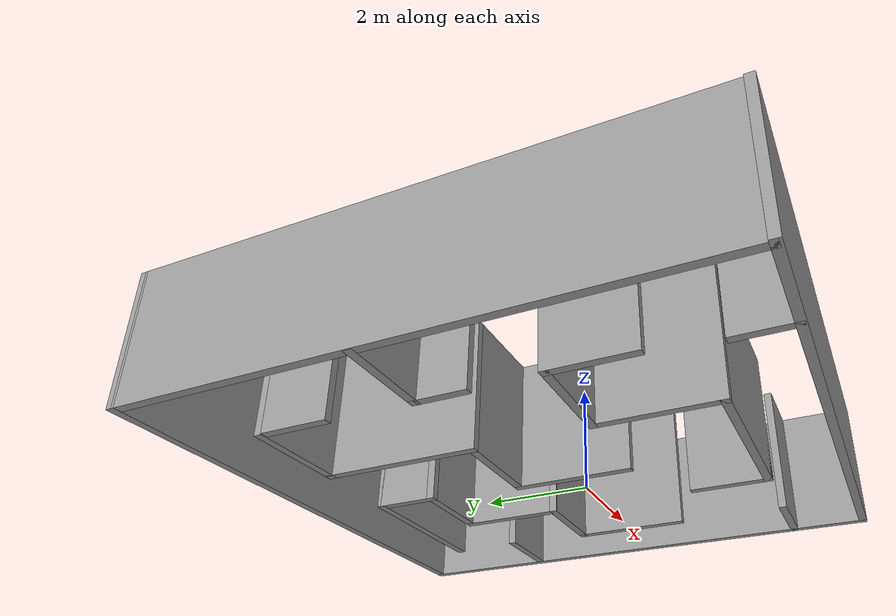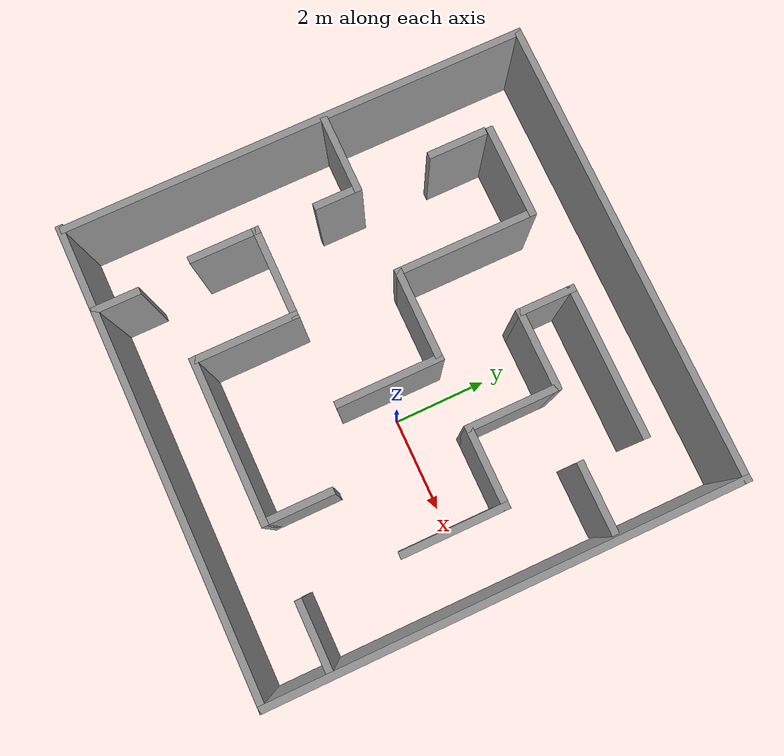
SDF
<?xml version='1.0'?>
<sdf version='1.7'>
  <model name='maze_room'>
    <pose>-0.95839 0.443644 0 0 -0 0</pose>
    <link name='Wall_0'>
      <collision name='Wall_0_Collision'>
        <geometry>
          <box>
            <size>10 0.15 2.5</size>
          </box>
        </geometry>
        <pose>0 0 1.25 0 -0 0</pose>
      </collision>
      <visual name='Wall_0_Visual'>
        <pose>0 0 1.25 0 -0 0</pose>
        <geometry>
          <box>
            <size>10 0.15 2.5</size>
          </box>
        </geometry>
        <material>
          <script>
            <uri>file://media/materials/scripts/gazebo.material</uri>
            <name>Gazebo/Grey</name>
          </script>
          <ambient>1 1 1 1</ambient>
        </material>
        <meta>
          <layer>0</layer>
        </meta>
      </visual>
      <pose>-2.8e-05 -4.92878 0 0 -0 0</pose>
    </link>
    <link name='Wall_10'>
      <collision name='Wall_10_Collision'>
        <geometry>
          <box>
            <size>1.25 0.15 2.5</size>
          </box>
        </geometry>
        <pose>0 0 1.25 0 -0 0</pose>
      </collision>
      <visual name='Wall_10_Visual'>
        <pose>0 0 1.25 0 -0 0</pose>
        <geometry>
          <box>
            <size>1.25 0.15 2.5</size>
          </box>
        </geometry>
        <material>
          <script>
            <uri>file://media/materials/scripts/gazebo.material</uri>
            <name>Gazebo/Grey</name>
          </script>
          <ambient>1 1 1 1</ambient>
        </material>
        <meta>
          <layer>0</layer>
        </meta>
      </visual>
      <pose>-3.28627 2.82175 0 0 -0 -1.5708</pose>
    </link>
    <link name='Wall_12'>
      <collision name='Wall_12_Collision'>
        <geometry>
          <box>
            <size>2 0.15 2.5</size>
          </box>
        </geometry>
        <pose>0 0 1.25 0 -0 0</pose>
      </collision>
      <visual name='Wall_12_Visual'>
        <pose>0 0 1.25 0 -0 0</pose>
        <geometry>
          <box>
            <size>2 0.15 2.5</size>
          </box>
        </geometry>
        <material>
          <script>
            <uri>file://media/materials/scripts/gazebo.material</uri>
            <name>Gazebo/Grey</name>
          </script>
          <ambient>1 1 1 1</ambient>
        </material>
        <meta>
          <layer>0</layer>
        </meta>
      </visual>
      <pose>-2.32609 3.53495 0 0 -0 0</pose>
    </link>
    <link name='Wall_13'>
      <collision name='Wall_13_Collision'>
        <geometry>
          <box>
            <size>3 0.15 2.5</size>
          </box>
        </geometry>
        <pose>0 0 1.25 0 -0 0</pose>
      </collision>
      <visual name='Wall_13_Visual'>
        <pose>0 0 1.25 0 -0 0</pose>
        <geometry>
          <box>
            <size>3 0.15 2.5</size>
          </box>
        </geometry>
        <material>
          <script>
            <uri>file://media/materials/scripts/gazebo.material</uri>
            <name>Gazebo/Grey</name>
          </script>
          <ambient>1 1 1 1</ambient>
        </material>
        <meta>
          <layer>0</layer>
        </meta>
      </visual>
      <pose>-1.40109 2.10995 0 0 -0 -1.5708</pose>
    </link>
    <link name='Wall_14'>
      <collision name='Wall_14_Collision'>
        <geometry>
          <box>
            <size>2 0.15 2.5</size>
          </box>
        </geometry>
        <pose>0 0 1.25 0 -0 0</pose>
      </collision>
      <visual name='Wall_14_Visual'>
        <pose>0 0 1.25 0 -0 0</pose>
        <geometry>
          <box>
            <size>2 0.15 2.5</size>
          </box>
        </geometry>
        <material>
          <script>
            <uri>file://media/materials/scripts/gazebo.material</uri>
            <name>Gazebo/Grey</name>
          </script>
          <ambient>1 1 1 1</ambient>
        </material>
        <meta>
          <layer>0</layer>
        </meta>
      </visual>
      <pose>-0.476086 0.684954 0 0 -0 0</pose>
    </link>
    <link name='Wall_15'>
      <collision name='Wall_15_Collision'>
        <geometry>
          <box>
            <size>2.25 0.15 2.5</size>
          </box>
        </geometry>
        <pose>0 0 1.25 0 -0 0</pose>
      </collision>
      <visual name='Wall_15_Visual'>
        <pose>0 0 1.25 0 -0 0</pose>
        <geometry>
          <box>
            <size>2.25 0.15 2.5</size>
          </box>
        </geometry>
        <material>
          <script>
            <uri>file://media/materials/scripts/gazebo.material</uri>
            <name>Gazebo/Grey</name>
          </script>
          <ambient>1 1 1 1</ambient>
        </material>
        <meta>
          <layer>0</layer>
        </meta>
      </visual>
      <pose>0.448914 -0.365046 0 0 -0 -1.5708</pose>
    </link>
    <link name='Wall_18'>
      <collision name='Wall_18_Collision'>
        <geometry>
          <box>
            <size>1.5 0.15 2.5</size>
          </box>
        </geometry>
        <pose>0 0 1.25 0 -0 0</pose>
      </collision>
      <visual name='Wall_18_Visual'>
        <pose>0 0 1.25 0 -0 0</pose>
        <geometry>
          <box>
            <size>1.5 0.15 2.5</size>
          </box>
        </geometry>
        <material>
          <script>
            <uri>file://media/materials/scripts/gazebo.material</uri>
            <name>Gazebo/Grey</name>
          </script>
          <ambient>1 1 1 1</ambient>
        </material>
        <meta>
          <layer>0</layer>
        </meta>
      </visual>
      <pose>-3.30449 -2.1574 0 0 -0 1.5708</pose>
    </link>
    <link name='Wall_20'>
      <collision name='Wall_20_Collision'>
        <geometry>
          <box>
            <size>2 0.15 2.5</size>
          </box>
        </geometry>
        <pose>0 0 1.25 0 -0 0</pose>
      </collision>
      <visual name='Wall_20_Visual'>
        <pose>0 0 1.25 0 -0 0</pose>
        <geometry>
          <box>
            <size>2 0.15 2.5</size>
          </box>
        </geometry>
        <material>
          <script>
            <uri>file://media/materials/scripts/gazebo.material</uri>
            <name>Gazebo/Grey</name>
          </script>
          <ambient>1 1 1 1</ambient>
        </material>
        <meta>
          <layer>0</layer>
        </meta>
      </visual>
      <pose>-2.37949 -1.4824 0 0 -0 0</pose>
    </link>
    <link name='Wall_21'>
      <collision name='Wall_21_Collision'>
        <geometry>
          <box>
            <size>2.25 0.15 2.5</size>
          </box>
        </geometry>
        <pose>0 0 1.25 0 -0 0</pose>
      </collision>
      <visual name='Wall_21_Visual'>
        <pose>0 0 1.25 0 -0 0</pose>
        <geometry>
          <box>
            <size>2.25 0.15 2.5</size>
          </box>
        </geometry>
        <material>
          <script>
            <uri>file://media/materials/scripts/gazebo.material</uri>
            <name>Gazebo/Grey</name>
          </script>
          <ambient>1 1 1 1</ambient>
        </material>
        <meta>
          <layer>0</layer>
        </meta>
      </visual>
      <pose>-1.45449 -2.5324 0 0 -0 -1.5708</pose>
    </link>
    <link name='Wall_22'>
      <collision name='Wall_22_Collision'>
        <geometry>
          <box>
            <size>3.5 0.15 2.5</size>
          </box>
        </geometry>
        <pose>0 0 1.25 0 -0 0</pose>
      </collision>
      <visual name='Wall_22_Visual'>
        <pose>0 0 1.25 0 -0 0</pose>
        <geometry>
          <box>
            <size>3.5 0.15 2.5</size>
          </box>
        </geometry>
        <material>
          <script>
            <uri>file://media/materials/scripts/gazebo.material</uri>
            <name>Gazebo/Grey</name>
          </script>
          <ambient>1 1 1 1</ambient>
        </material>
        <meta>
          <layer>0</layer>
        </meta>
      </visual>
      <pose>0.220512 -3.5824 0 0 -0 0</pose>
    </link>
    <link name='Wall_23'>
      <collision name='Wall_23_Collision'>
        <geometry>
          <box>
            <size>1.5 0.15 2.5</size>
          </box>
        </geometry>
        <pose>0 0 1.25 0 -0 0</pose>
      </collision>
      <visual name='Wall_23_Visual'>
        <pose>0 0 1.25 0 -0 0</pose>
        <geometry>
          <box>
            <size>1.5 0.15 2.5</size>
          </box>
        </geometry>
        <material>
          <script>
            <uri>file://media/materials/scripts/gazebo.material</uri>
            <name>Gazebo/Grey</name>
          </script>
          <ambient>1 1 1 1</ambient>
        </material>
        <meta>
          <layer>0</layer>
        </meta>
      </visual>
      <pose>1.89551 -2.9074 0 0 -0 1.5708</pose>
    </link>
    <link name='Wall_25'>
      <collision name='Wall_25_Collision'>
        <geometry>
          <box>
            <size>2.25 0.15 2.5</size>
          </box>
        </geometry>
        <pose>0 0 1.25 0 -0 0</pose>
      </collision>
      <visual name='Wall_25_Visual'>
        <pose>0 0 1.25 0 -0 0</pose>
        <geometry>
          <box>
            <size>2.25 0.15 2.5</size>
          </box>
        </geometry>
        <material>
          <script>
            <uri>file://media/materials/scripts/gazebo.material</uri>
            <name>Gazebo/Grey</name>
          </script>
          <ambient>1 1 1 1</ambient>
        </material>
        <meta>
          <layer>0</layer>
        </meta>
      </visual>
      <pose>3.49551 -0.432402 0 0 -0 1.5708</pose>
    </link>
    <link name='Wall_26'>
      <collision name='Wall_26_Collision'>
        <geometry>
          <box>
            <size>1.75 0.15 2.5</size>
          </box>
        </geometry>
        <pose>0 0 1.25 0 -0 0</pose>
      </collision>
      <visual name='Wall_26_Visual'>
        <pose>0 0 1.25 0 -0 0</pose>
        <geometry>
          <box>
            <size>1.75 0.15 2.5</size>
          </box>
        </geometry>
        <material>
          <script>
            <uri>file://media/materials/scripts/gazebo.material</uri>
            <name>Gazebo/Grey</name>
          </script>
          <ambient>1 1 1 1</ambient>
        </material>
        <meta>
          <layer>0</layer>
        </meta>
      </visual>
      <pose>2.69551 0.617598 0 0 -0 3.14159</pose>
    </link>
    <link name='Wall_27'>
      <collision name='Wall_27_Collision'>
        <geometry>
          <box>
            <size>2 0.15 2.5</size>
          </box>
        </geometry>
        <pose>0 0 1.25 0 -0 0</pose>
      </collision>
      <visual name='Wall_27_Visual'>
        <pose>0 0 1.25 0 -0 0</pose>
        <geometry>
          <box>
            <size>2 0.15 2.5</size>
          </box>
        </geometry>
        <material>
          <script>
            <uri>file://media/materials/scripts/gazebo.material</uri>
            <name>Gazebo/Grey</name>
          </script>
          <ambient>1 1 1 1</ambient>
        </material>
        <meta>
          <layer>0</layer>
        </meta>
      </visual>
      <pose>1.89551 1.5426 0 0 -0 1.5708</pose>
    </link>
    <link name='Wall_28'>
      <collision name='Wall_28_Collision'>
        <geometry>
          <box>
            <size>1.75 0.15 2.5</size>
          </box>
        </geometry>
        <pose>0 0 1.25 0 -0 0</pose>
      </collision>
      <visual name='Wall_28_Visual'>
        <pose>0 0 1.25 0 -0 0</pose>
        <geometry>
          <box>
            <size>1.75 0.15 2.5</size>
          </box>
        </geometry>
        <material>
          <script>
            <uri>file://media/materials/scripts/gazebo.material</uri>
            <name>Gazebo/Grey</name>
          </script>
          <ambient>1 1 1 1</ambient>
        </material>
        <meta>
          <layer>0</layer>
        </meta>
      </visual>
      <pose>1.09551 2.4676 0 0 -0 3.14159</pose>
    </link>
    <link name='Wall_29'>
      <collision name='Wall_29_Collision'>
        <geometry>
          <box>
            <size>1.25 0.15 2.5</size>
          </box>
        </geometry>
        <pose>0 0 1.25 0 -0 0</pose>
      </collision>
      <visual name='Wall_29_Visual'>
        <pose>0 0 1.25 0 -0 0</pose>
        <geometry>
          <box>
            <size>1.25 0.15 2.5</size>
          </box>
        </geometry>
        <material>
          <script>
            <uri>file://media/materials/scripts/gazebo.material</uri>
            <name>Gazebo/Grey</name>
          </script>
          <ambient>1 1 1 1</ambient>
        </material>
        <meta>
          <layer>0</layer>
        </meta>
      </visual>
      <pose>0.295512 3.0176 0 0 -0 1.5708</pose>
    </link>
    <link name='Wall_30'>
      <collision name='Wall_30_Collision'>
        <geometry>
          <box>
            <size>3.25 0.15 2.5</size>
          </box>
        </geometry>
        <pose>0 0 1.25 0 -0 0</pose>
      </collision>
      <visual name='Wall_30_Visual'>
        <pose>0 0 1.25 0 -0 0</pose>
        <geometry>
          <box>
            <size>3.25 0.15 2.5</size>
          </box>
        </geometry>
        <material>
          <script>
            <uri>file://media/materials/scripts/gazebo.material</uri>
            <name>Gazebo/Grey</name>
          </script>
          <ambient>1 1 1 1</ambient>
        </material>
        <meta>
          <layer>0</layer>
        </meta>
      </visual>
      <pose>1.84551 3.5676 0 0 -0 0</pose>
    </link>
    <link name='Wall_32'>
      <collision name='Wall_32_Collision'>
        <geometry>
          <box>
            <size>1.5 0.15 2.5</size>
          </box>
        </geometry>
        <pose>0 0 1.25 0 -0 0</pose>
      </collision>
      <visual name='Wall_32_Visual'>
        <pose>0 0 1.25 0 -0 0</pose>
        <geometry>
          <box>
            <size>1.5 0.15 2.5</size>
          </box>
        </geometry>
        <material>
          <script>
            <uri>file://media/materials/scripts/gazebo.material</uri>
            <name>Gazebo/Grey</name>
          </script>
          <ambient>1 1 1 1</ambient>
        </material>
        <meta>
          <layer>0</layer>
        </meta>
      </visual>
      <pose>4.17824 -3.57116 0 0 -0 0</pose>
    </link>
    <link name='Wall_34'>
      <collision name='Wall_34_Collision'>
        <geometry>
          <box>
            <size>1 0.15 2.5</size>
          </box>
        </geometry>
        <pose>0 0 1.25 0 -0 0</pose>
      </collision>
      <visual name='Wall_34_Visual'>
        <pose>0 0 1.25 0 -0 0</pose>
        <geometry>
          <box>
            <size>1 0.15 2.5</size>
          </box>
        </geometry>
        <material>
          <script>
            <uri>file://media/materials/scripts/gazebo.material</uri>
            <name>Gazebo/Grey</name>
          </script>
          <ambient>1 1 1 1</ambient>
        </material>
        <meta>
          <layer>0</layer>
        </meta>
      </visual>
      <pose>-3.14555 -4.48295 0 0 -0 1.5708</pose>
    </link>
    <link name='Wall_36'>
      <collision name='Wall_36_Collision'>
        <geometry>
          <box>
            <size>1.75 0.15 2.5</size>
          </box>
        </geometry>
        <pose>0 0 1.25 0 -0 0</pose>
      </collision>
      <visual name='Wall_36_Visual'>
        <pose>0 0 1.25 0 -0 0</pose>
        <geometry>
          <box>
            <size>1.75 0.15 2.5</size>
          </box>
        </geometry>
        <material>
          <script>
            <uri>file://media/materials/scripts/gazebo.material</uri>
            <name>Gazebo/Grey</name>
          </script>
          <ambient>1 1 1 1</ambient>
        </material>
        <meta>
          <layer>0</layer>
        </meta>
      </visual>
      <pose>-4.06931 0.650296 0 0 -0 0</pose>
    </link>
    <link name='Wall_37'>
      <collision name='Wall_37_Collision'>
        <geometry>
          <box>
            <size>1 0.15 2.5</size>
          </box>
        </geometry>
        <pose>0 0 1.25 0 -0 0</pose>
      </collision>
      <visual name='Wall_37_Visual'>
        <pose>0 0 1.25 0 -0 0</pose>
        <geometry>
          <box>
            <size>1 0.15 2.5</size>
          </box>
        </geometry>
        <material>
          <script>
            <uri>file://media/materials/scripts/gazebo.material</uri>
            <name>Gazebo/Grey</name>
          </script>
          <ambient>1 1 1 1</ambient>
        </material>
        <meta>
          <layer>0</layer>
        </meta>
      </visual>
      <pose>-3.26931 0.225296 0 0 -0 -1.5708</pose>
    </link>
    <link name='Wall_39'>
      <collision name='Wall_39_Collision'>
        <geometry>
          <box>
            <size>1.5 0.15 2.5</size>
          </box>
        </geometry>
        <pose>0 0 1.25 0 -0 0</pose>
      </collision>
      <visual name='Wall_39_Visual'>
        <pose>0 0 1.25 0 -0 0</pose>
        <geometry>
          <box>
            <size>1.5 0.15 2.5</size>
          </box>
        </geometry>
        <material>
          <script>
            <uri>file://media/materials/scripts/gazebo.material</uri>
            <name>Gazebo/Grey</name>
          </script>
          <ambient>1 1 1 1</ambient>
        </material>
        <meta>
          <layer>0</layer>
        </meta>
      </visual>
      <pose>4.0727 2.23334 0 0 -0 0</pose>
    </link>
    <link name='Wall_4'>
      <collision name='Wall_4_Collision'>
        <geometry>
          <box>
            <size>9.97232 0.15 2.5</size>
          </box>
        </geometry>
        <pose>0 0 1.25 0 -0 0</pose>
      </collision>
      <visual name='Wall_4_Visual'>
        <pose>0 0 1.25 0 -0 0</pose>
        <geometry>
          <box>
            <size>9.97232 0.15 2.5</size>
          </box>
        </geometry>
        <material>
          <script>
            <uri>file://media/materials/scripts/gazebo.material</uri>
            <name>Gazebo/Grey</name>
          </script>
          <ambient>1 1 1 1</ambient>
        </material>
        <meta>
          <layer>0</layer>
        </meta>
      </visual>
      <pose>-4.88985 0.017561 0 0 -0 1.5708</pose>
    </link>
    <link name='Wall_6'>
      <collision name='Wall_6_Collision'>
        <geometry>
          <box>
            <size>10 0.15 2.5</size>
          </box>
        </geometry>
        <pose>0 0 1.25 0 -0 0</pose>
      </collision>
      <visual name='Wall_6_Visual'>
        <pose>0 0 1.25 0 -0 0</pose>
        <geometry>
          <box>
            <size>10 0.15 2.5</size>
          </box>
        </geometry>
        <material>
          <script>
            <uri>file://media/materials/scripts/gazebo.material</uri>
            <name>Gazebo/Grey</name>
          </script>
          <ambient>1 1 1 1</ambient>
        </material>
        <meta>
          <layer>0</layer>
        </meta>
      </visual>
      <pose>4.92497 -0.003777 0 0 -0 1.5708</pose>
    </link>
    <link name='Wall_8'>
      <collision name='Wall_8_Collision'>
        <geometry>
          <box>
            <size>9.96482 0.15 2.5</size>
          </box>
        </geometry>
        <pose>0 0 1.25 0 -0 0</pose>
      </collision>
      <visual name='Wall_8_Visual'>
        <pose>0 0 1.25 0 -0 0</pose>
        <geometry>
          <box>
            <size>9.96482 0.15 2.5</size>
          </box>
        </geometry>
        <material>
          <script>
            <uri>file://media/materials/scripts/gazebo.material</uri>
            <name>Gazebo/Grey</name>
          </script>
          <ambient>1 1 1 1</ambient>
        </material>
        <meta>
          <layer>0</layer>
        </meta>
      </visual>
      <pose>0.017561 4.92497 0 0 -0 -0.000764</pose>
    </link>
    <static>1</static>
  </model>
</sdf>
